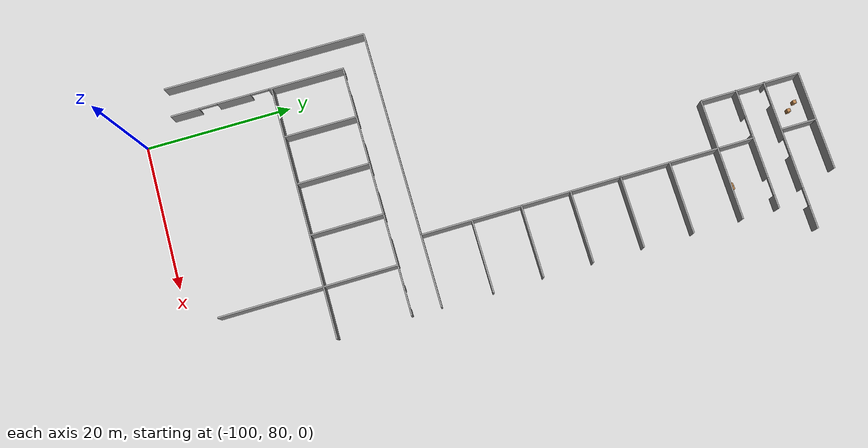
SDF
<sdf version="1.6">
 <world name="default">
  <model name="ground_plane">
   <static>1</static>
   <link name="link">
    <collision name="collision">
     <geometry><plane><normal>0 0 1</normal><size>100 100</size></plane></geometry>
     <surface><friction><ode><mu>100</mu><mu2>50</mu2></ode></friction></surface>
    </collision>
    <visual name="visual">
     <cast_shadows>0</cast_shadows>
     <geometry><plane><normal>0 0 1</normal><size>100 100</size></plane></geometry>
     <material>
      <script><uri>file://media/materials/scripts/gazebo.material</uri><name>Gazebo/Grey</name></script>
     </material>
    </visual>
   </link>
  </model>
  <model name="Jacaranda_v4_clone_1">
   <link name="Wall_0">
    <pose>-8.84429 26.2823 0 0 -0 0</pose>
    <visual name="Wall_0_Visual_0">
     <pose>-10.1136 0 1.25 0 -0 0</pose>
     <geometry><box><size>0.772872 0.2 2.5</size></box></geometry>
     <material>
      <script><uri>file://media/materials/scripts/gazebo.material</uri><name>Gazebo/Grey</name></script>
     </material>
    </visual>
    <collision name="Wall_0_Collision_0">
     <geometry><box><size>0.772872 0.2 2.5</size></box></geometry>
     <pose>-10.1136 0 1.25 0 -0 0</pose>
    </collision>
    <visual name="Wall_0_Visual_1">
     <pose>-4.7572 0 1.25 0 -0 0</pose>
     <geometry><box><size>4.93987 0.2 2.5</size></box></geometry>
     <material>
      <script><uri>file://media/materials/scripts/gazebo.material</uri><name>Gazebo/Grey</name></script>
     </material>
    </visual>
    <collision name="Wall_0_Collision_1">
     <geometry><box><size>4.93987 0.2 2.5</size></box></geometry>
     <pose>-4.7572 0 1.25 0 -0 0</pose>
    </collision>
    <visual name="Wall_0_Visual_2">
     <pose>2.52116 0 1.25 0 -0 0</pose>
     <geometry><box><size>4.61684 0.2 2.5</size></box></geometry>
     <material>
      <script><uri>file://media/materials/scripts/gazebo.material</uri><name>Gazebo/Grey</name></script>
     </material>
    </visual>
    <collision name="Wall_0_Collision_2">
     <geometry><box><size>4.61684 0.2 2.5</size></box></geometry>
     <pose>2.52116 0 1.25 0 -0 0</pose>
    </collision>
    <visual name="Wall_0_Visual_3">
     <pose>8.91479 0 1.25 0 -0 0</pose>
     <geometry><box><size>3.17042 0.2 2.5</size></box></geometry>
     <material>
      <script><uri>file://media/materials/scripts/gazebo.material</uri><name>Gazebo/Grey</name></script>
     </material>
    </visual>
    <collision name="Wall_0_Collision_3">
     <geometry><box><size>3.17042 0.2 2.5</size></box></geometry>
     <pose>8.91479 0 1.25 0 -0 0</pose>
    </collision>
    <visual name="Wall_0_Visual_4">
     <pose>-8.47713 0 2.25 0 -0 0</pose>
     <geometry><box><size>2.5 0.2 0.5</size></box></geometry>
     <material>
      <script><uri>file://media/materials/scripts/gazebo.material</uri><name>Gazebo/Grey</name></script>
     </material>
    </visual>
    <collision name="Wall_0_Collision_4">
     <geometry><box><size>2.5 0.2 0.5</size></box></geometry>
     <pose>-8.47713 0 2.25 0 -0 0</pose>
    </collision>
    <visual name="Wall_0_Visual_5">
     <pose>-1.03726 0 2.25 0 -0 0</pose>
     <geometry><box><size>2.5 0.2 0.5</size></box></geometry>
     <material>
      <script><uri>file://media/materials/scripts/gazebo.material</uri><name>Gazebo/Grey</name></script>
     </material>
    </visual>
    <collision name="Wall_0_Collision_5">
     <geometry><box><size>2.5 0.2 0.5</size></box></geometry>
     <pose>-1.03726 0 2.25 0 -0 0</pose>
    </collision>
    <visual name="Wall_0_Visual_6">
     <pose>6.07958 0 2.25 0 -0 0</pose>
     <geometry><box><size>2.5 0.2 0.5</size></box></geometry>
     <material>
      <script><uri>file://media/materials/scripts/gazebo.material</uri><name>Gazebo/Grey</name></script>
     </material>
    </visual>
    <collision name="Wall_0_Collision_6">
     <geometry><box><size>2.5 0.2 0.5</size></box></geometry>
     <pose>6.07958 0 2.25 0 -0 0</pose>
    </collision>
   </link>
   <link name="Wall_102">
    <collision name="Wall_102_Collision">
     <geometry><box><size>10 0.2 2.5</size></box></geometry>
     <pose>0 0 1.25 0 -0 0</pose>
    </collision>
    <visual name="Wall_102_Visual">
     <pose>0 0 1.25 0 -0 0</pose>
     <geometry><box><size>10 0.2 2.5</size></box></geometry>
     <material>
      <script><uri>file://media/materials/scripts/gazebo.material</uri><name>Gazebo/Grey</name></script>
     </material>
    </visual>
    <velocity_decay><linear>0</linear><angular>0</angular></velocity_decay>
    <pose>-16.4411 -32.898 0 0 0 -1.5708</pose>
   </link>
   <link name="Wall_104">
    <collision name="Wall_104_Collision">
     <geometry><box><size>10 0.2 2.5</size></box></geometry>
     <pose>0 0 1.25 0 -0 0</pose>
    </collision>
    <visual name="Wall_104_Visual">
     <pose>0 0 1.25 0 -0 0</pose>
     <geometry><box><size>10 0.2 2.5</size></box></geometry>
     <material>
      <script><uri>file://media/materials/scripts/gazebo.material</uri><name>Gazebo/Grey</name></script>
     </material>
    </visual>
    <velocity_decay><linear>0</linear><angular>0</angular></velocity_decay>
    <pose>-23.6073 -32.9162 0 0 0 -1.5708</pose>
   </link>
   <link name="Wall_106">
    <collision name="Wall_106_Collision">
     <geometry><box><size>10 0.2 2.5</size></box></geometry>
     <pose>0 0 1.25 0 -0 0</pose>
    </collision>
    <visual name="Wall_106_Visual">
     <pose>0 0 1.25 0 -0 0</pose>
     <geometry><box><size>10 0.2 2.5</size></box></geometry>
     <material>
      <script><uri>file://media/materials/scripts/gazebo.material</uri><name>Gazebo/Grey</name></script>
     </material>
    </visual>
    <velocity_decay><linear>0</linear><angular>0</angular></velocity_decay>
    <pose>-30.3649 -32.9482 0 0 0 -1.5708</pose>
   </link>
   <link name="Wall_108">
    <pose>-37.4695 -39.9617 0 0 0 -1.5708</pose>
    <visual name="Wall_108_Visual_0">
     <pose>-6.76156 0 1.25 0 -0 0</pose>
     <geometry><box><size>10.4769 0.2 2.5</size></box></geometry>
     <material>
      <script><uri>file://media/materials/scripts/gazebo.material</uri><name>Gazebo/Grey</name></script>
     </material>
    </visual>
    <collision name="Wall_108_Collision_0">
     <geometry><box><size>10.4769 0.2 2.5</size></box></geometry>
     <pose>-6.76156 0 1.25 0 -0 0</pose>
    </collision>
    <visual name="Wall_108_Visual_1">
     <pose>3.29825 0 1.25 0 -0 0</pose>
     <geometry><box><size>4.64276 0.2 2.5</size></box></geometry>
     <material>
      <script><uri>file://media/materials/scripts/gazebo.material</uri><name>Gazebo/Grey</name></script>
     </material>
    </visual>
    <collision name="Wall_108_Collision_1">
     <geometry><box><size>4.64276 0.2 2.5</size></box></geometry>
     <pose>3.29825 0 1.25 0 -0 0</pose>
    </collision>
    <visual name="Wall_108_Visual_2">
     <pose>10.0598 0 1.25 0 -0 0</pose>
     <geometry><box><size>3.88036 0.2 2.5</size></box></geometry>
     <material>
      <script><uri>file://media/materials/scripts/gazebo.material</uri><name>Gazebo/Grey</name></script>
     </material>
    </visual>
    <collision name="Wall_108_Collision_2">
     <geometry><box><size>3.88036 0.2 2.5</size></box></geometry>
     <pose>10.0598 0 1.25 0 -0 0</pose>
    </collision>
    <visual name="Wall_108_Visual_3">
     <pose>-0.273129 0 2.25 0 -0 0</pose>
     <geometry><box><size>2.5 0.2 0.5</size></box></geometry>
     <material>
      <script><uri>file://media/materials/scripts/gazebo.material</uri><name>Gazebo/Grey</name></script>
     </material>
    </visual>
    <collision name="Wall_108_Collision_3">
     <geometry><box><size>2.5 0.2 0.5</size></box></geometry>
     <pose>-0.273129 0 2.25 0 -0 0</pose>
    </collision>
    <visual name="Wall_108_Visual_4">
     <pose>6.86964 0 2.25 0 -0 0</pose>
     <geometry><box><size>2.5 0.2 0.5</size></box></geometry>
     <material>
      <script><uri>file://media/materials/scripts/gazebo.material</uri><name>Gazebo/Grey</name></script>
     </material>
    </visual>
    <collision name="Wall_108_Collision_4">
     <geometry><box><size>2.5 0.2 0.5</size></box></geometry>
     <pose>6.86964 0 2.25 0 -0 0</pose>
    </collision>
   </link>
   <link name="Wall_114">
    <collision name="Wall_114_Collision">
     <geometry><box><size>28 0.2 2.5</size></box></geometry>
     <pose>0 0 1.25 0 -0 0</pose>
    </collision>
    <visual name="Wall_114_Visual">
     <pose>0 0 1.25 0 -0 0</pose>
     <geometry><box><size>28 0.2 2.5</size></box></geometry>
     <material>
      <script><uri>file://media/materials/scripts/gazebo.material</uri><name>Gazebo/Grey</name></script>
     </material>
    </visual>
    <velocity_decay><linear>0</linear><angular>0</angular></velocity_decay>
    <pose>-41.4842 -37.994 0 0 0 -1.5708</pose>
   </link>
   <link name="Wall_2">
    <collision name="Wall_2_Collision">
     <geometry><box><size>10 0.2 2.5</size></box></geometry>
     <pose>0 0 1.25 0 -0 0</pose>
    </collision>
    <visual name="Wall_2_Visual">
     <pose>0 0 1.25 0 -0 0</pose>
     <geometry><box><size>10 0.2 2.5</size></box></geometry>
     <material>
      <script><uri>file://media/materials/scripts/gazebo.material</uri><name>Gazebo/Grey</name></script>
     </material>
    </visual>
    <velocity_decay><linear>0</linear><angular>0</angular></velocity_decay>
    <pose>-7.44654 3.56016 0 0 -0 0</pose>
   </link>
   <link name="Wall_22">
    <collision name="Wall_22_Collision">
     <geometry><box><size>5 0.2 2.5</size></box></geometry>
     <pose>0 0 1.25 0 -0 0</pose>
    </collision>
    <visual name="Wall_22_Visual">
     <pose>0 0 1.25 0 -0 0</pose>
     <geometry><box><size>5 0.2 2.5</size></box></geometry>
     <material>
      <script><uri>file://media/materials/scripts/gazebo.material</uri><name>Gazebo/Grey</name></script>
     </material>
    </visual>
    <velocity_decay><linear>0</linear><angular>0</angular></velocity_decay>
    <pose>-19.2226 28.7685 0 0 -0 1.5708</pose>
   </link>
   <link name="Wall_24">
    <collision name="Wall_24_Collision">
     <geometry><box><size>7 0.2 2.5</size></box></geometry>
     <pose>0 0 1.25 0 -0 0</pose>
    </collision>
    <visual name="Wall_24_Visual">
     <pose>0 0 1.25 0 -0 0</pose>
     <geometry><box><size>7 0.2 2.5</size></box></geometry>
     <material>
      <script><uri>file://media/materials/scripts/gazebo.material</uri><name>Gazebo/Grey</name></script>
     </material>
    </visual>
    <velocity_decay><linear>0</linear><angular>0</angular></velocity_decay>
    <pose>-15.7827 31.2426 0 0 -0 0</pose>
   </link>
   <link name="Wall_26">
    <collision name="Wall_26_Collision">
     <geometry><box><size>5 0.2 2.5</size></box></geometry>
     <pose>0 0 1.25 0 -0 0</pose>
    </collision>
    <visual name="Wall_26_Visual">
     <pose>0 0 1.25 0 -0 0</pose>
     <geometry><box><size>5 0.2 2.5</size></box></geometry>
     <material>
      <script><uri>file://media/materials/scripts/gazebo.material</uri><name>Gazebo/Grey</name></script>
     </material>
    </visual>
    <velocity_decay><linear>0</linear><angular>0</angular></velocity_decay>
    <pose>-12.42 28.8426 0 0 0 -1.5708</pose>
   </link>
   <link name="Wall_29">
    <collision name="Wall_29_Collision">
     <geometry><box><size>7 0.2 2.5</size></box></geometry>
     <pose>0 0 1.25 0 -0 0</pose>
    </collision>
    <visual name="Wall_29_Visual">
     <pose>0 0 1.25 0 -0 0</pose>
     <geometry><box><size>7 0.2 2.5</size></box></geometry>
     <material>
      <script><uri>file://media/materials/scripts/gazebo.material</uri><name>Gazebo/Grey</name></script>
     </material>
    </visual>
    <velocity_decay><linear>0</linear><angular>0</angular></velocity_decay>
    <pose>-8.85634 31.2426 0 0 -0 0</pose>
   </link>
   <link name="Wall_39">
    <collision name="Wall_39_Collision">
     <geometry><box><size>4 0.2 2.5</size></box></geometry>
     <pose>0 0 1.25 0 -0 0</pose>
    </collision>
    <visual name="Wall_39_Visual">
     <pose>0 0 1.25 0 -0 0</pose>
     <geometry><box><size>4 0.2 2.5</size></box></geometry>
     <material>
      <script><uri>file://media/materials/scripts/gazebo.material</uri><name>Gazebo/Grey</name></script>
     </material>
    </visual>
    <velocity_decay><linear>0</linear><angular>0</angular></velocity_decay>
    <pose>-19.206 24.2121 0 0 0 -1.5708</pose>
   </link>
   <link name="Wall_41">
    <pose>-10.8339 22.3118 0 0 -0 0</pose>
    <visual name="Wall_41_Visual_0">
     <pose>-6.54675 0 1.25 0 -0 0</pose>
     <geometry><box><size>3.9065 0.2 2.5</size></box></geometry>
     <material>
      <script><uri>file://media/materials/scripts/gazebo.material</uri><name>Gazebo/Grey</name></script>
     </material>
    </visual>
    <collision name="Wall_41_Collision_0">
     <geometry><box><size>3.9065 0.2 2.5</size></box></geometry>
     <pose>-6.54675 0 1.25 0 -0 0</pose>
    </collision>
    <visual name="Wall_41_Visual_1">
     <pose>1.04072 0 1.25 0 -0 0</pose>
     <geometry><box><size>6.26843 0.2 2.5</size></box></geometry>
     <material>
      <script><uri>file://media/materials/scripts/gazebo.material</uri><name>Gazebo/Grey</name></script>
     </material>
    </visual>
    <collision name="Wall_41_Collision_1">
     <geometry><box><size>6.26843 0.2 2.5</size></box></geometry>
     <pose>1.04072 0 1.25 0 -0 0</pose>
    </collision>
    <visual name="Wall_41_Visual_2">
     <pose>7.58747 0 1.25 0 -0 0</pose>
     <geometry><box><size>1.82507 0.2 2.5</size></box></geometry>
     <material>
      <script><uri>file://media/materials/scripts/gazebo.material</uri><name>Gazebo/Grey</name></script>
     </material>
    </visual>
    <collision name="Wall_41_Collision_2">
     <geometry><box><size>1.82507 0.2 2.5</size></box></geometry>
     <pose>7.58747 0 1.25 0 -0 0</pose>
    </collision>
    <visual name="Wall_41_Visual_3">
     <pose>-3.3435 0 2.25 0 -0 0</pose>
     <geometry><box><size>2.5 0.2 0.5</size></box></geometry>
     <material>
      <script><uri>file://media/materials/scripts/gazebo.material</uri><name>Gazebo/Grey</name></script>
     </material>
    </visual>
    <collision name="Wall_41_Collision_3">
     <geometry><box><size>2.5 0.2 0.5</size></box></geometry>
     <pose>-3.3435 0 2.25 0 -0 0</pose>
    </collision>
    <visual name="Wall_41_Visual_4">
     <pose>5.42493 0 2.25 0 -0 0</pose>
     <geometry><box><size>2.5 0.2 0.5</size></box></geometry>
     <material>
      <script><uri>file://media/materials/scripts/gazebo.material</uri><name>Gazebo/Grey</name></script>
     </material>
    </visual>
    <collision name="Wall_41_Collision_4">
     <geometry><box><size>2.5 0.2 0.5</size></box></geometry>
     <pose>5.42493 0 2.25 0 -0 0</pose>
    </collision>
   </link>
   <link name="Wall_45">
    <collision name="Wall_45_Collision">
     <geometry><box><size>5 0.2 2.5</size></box></geometry>
     <pose>0 0 1.25 0 -0 0</pose>
    </collision>
    <visual name="Wall_45_Visual">
     <pose>0 0 1.25 0 -0 0</pose>
     <geometry><box><size>5 0.2 2.5</size></box></geometry>
     <material>
      <script><uri>file://media/materials/scripts/gazebo.material</uri><name>Gazebo/Grey</name></script>
     </material>
    </visual>
    <velocity_decay><linear>0</linear><angular>0</angular></velocity_decay>
    <pose>-19.2149 19.8047 0 0 0 -1.5708</pose>
   </link>
   <link name="Wall_47">
    <collision name="Wall_47_Collision">
     <geometry><box><size>16.9069 0.2 2.5</size></box></geometry>
     <pose>0 0 1.25 0 -0 0</pose>
    </collision>
    <visual name="Wall_47_Visual">
     <pose>0 0 1.25 0 -0 0</pose>
     <geometry><box><size>16.9069 0.2 2.5</size></box></geometry>
     <material>
      <script><uri>file://media/materials/scripts/gazebo.material</uri><name>Gazebo/Grey</name></script>
     </material>
    </visual>
    <velocity_decay><linear>0</linear><angular>0</angular></velocity_decay>
    <pose>-10.7923 17.2628 0 0 -0 0</pose>
   </link>
   <link name="Wall_49">
    <collision name="Wall_49_Collision">
     <geometry><box><size>46.4765 0.2 2.5</size></box></geometry>
     <pose>0 0 1.25 0 -0 0</pose>
    </collision>
    <visual name="Wall_49_Visual">
     <pose>0 0 1.25 0 -0 0</pose>
     <geometry><box><size>46.4765 0.2 2.5</size></box></geometry>
     <material>
      <script><uri>file://media/materials/scripts/gazebo.material</uri><name>Gazebo/Grey</name></script>
     </material>
    </visual>
    <velocity_decay><linear>0</linear><angular>0</angular></velocity_decay>
    <pose>-12.3393 -0.801467 0 0 0 -1.5708</pose>
   </link>
   <link name="Wall_52">
    <collision name="Wall_52_Collision">
     <geometry><box><size>24.1932 0.2 2.5</size></box></geometry>
     <pose>0 0 1.25 0 -0 0</pose>
    </collision>
    <visual name="Wall_52_Visual">
     <pose>0 0 1.25 0 -0 0</pose>
     <geometry><box><size>24.1932 0.2 2.5</size></box></geometry>
     <material>
      <script><uri>file://media/materials/scripts/gazebo.material</uri><name>Gazebo/Grey</name></script>
     </material>
    </visual>
    <velocity_decay><linear>0</linear><angular>0</angular></velocity_decay>
    <pose>-9.37734 -40.0171 0 0 0 -1.5708</pose>
   </link>
   <link name="Wall_55">
    <collision name="Wall_55_Collision">
     <geometry><box><size>10 0.2 2.5</size></box></geometry>
     <pose>0 0 1.25 0 -0 0</pose>
    </collision>
    <visual name="Wall_55_Visual">
     <pose>0 0 1.25 0 -0 0</pose>
     <geometry><box><size>10 0.2 2.5</size></box></geometry>
     <material>
      <script><uri>file://media/materials/scripts/gazebo.material</uri><name>Gazebo/Grey</name></script>
     </material>
    </visual>
    <velocity_decay><linear>0</linear><angular>0</angular></velocity_decay>
    <pose>-7.39012 10.4267 0 0 -0 3.14159</pose>
   </link>
   <link name="Wall_59">
    <collision name="Wall_59_Collision">
     <geometry><box><size>10 0.2 2.5</size></box></geometry>
     <pose>0 0 1.25 0 -0 0</pose>
    </collision>
    <visual name="Wall_59_Visual">
     <pose>0 0 1.25 0 -0 0</pose>
     <geometry><box><size>10 0.2 2.5</size></box></geometry>
     <material>
      <script><uri>file://media/materials/scripts/gazebo.material</uri><name>Gazebo/Grey</name></script>
     </material>
    </visual>
    <velocity_decay><linear>0</linear><angular>0</angular></velocity_decay>
    <pose>-7.43285 -3.41806 0 0 -0 0</pose>
   </link>
   <link name="Wall_61">
    <collision name="Wall_61_Collision">
     <geometry><box><size>10 0.2 2.5</size></box></geometry>
     <pose>0 0 1.25 0 -0 0</pose>
    </collision>
    <visual name="Wall_61_Visual">
     <pose>0 0 1.25 0 -0 0</pose>
     <geometry><box><size>10 0.2 2.5</size></box></geometry>
     <material>
      <script><uri>file://media/materials/scripts/gazebo.material</uri><name>Gazebo/Grey</name></script>
     </material>
    </visual>
    <velocity_decay><linear>0</linear><angular>0</angular></velocity_decay>
    <pose>-7.44869 -10.2258 0 0 -0 0</pose>
   </link>
   <link name="Wall_63">
    <collision name="Wall_63_Collision">
     <geometry><box><size>10 0.2 2.5</size></box></geometry>
     <pose>0 0 1.25 0 -0 0</pose>
    </collision>
    <visual name="Wall_63_Visual">
     <pose>0 0 1.25 0 -0 0</pose>
     <geometry><box><size>10 0.2 2.5</size></box></geometry>
     <material>
      <script><uri>file://media/materials/scripts/gazebo.material</uri><name>Gazebo/Grey</name></script>
     </material>
    </visual>
    <velocity_decay><linear>0</linear><angular>0</angular></velocity_decay>
    <pose>-7.36232 -17.0326 0 0 -0 0</pose>
   </link>
   <link name="Wall_65">
    <pose>-21.9808 -24.0075 0 0 -0 0</pose>
    <visual name="Wall_65_Visual_0">
     <pose>-16.5353 0 1.25 0 -0 0</pose>
     <geometry><box><size>5.92942 0.2 2.5</size></box></geometry>
     <material>
      <script><uri>file://media/materials/scripts/gazebo.material</uri><name>Gazebo/Grey</name></script>
     </material>
    </visual>
    <collision name="Wall_65_Collision_0">
     <geometry><box><size>5.92942 0.2 2.5</size></box></geometry>
     <pose>-16.5353 0 1.25 0 -0 0</pose>
    </collision>
    <visual name="Wall_65_Visual_1">
     <pose>2.96471 0 0.25 0 -0 0</pose>
     <geometry><box><size>33.0706 0.2 0.5</size></box></geometry>
     <material>
      <script><uri>file://media/materials/scripts/gazebo.material</uri><name>Gazebo/Grey</name></script>
     </material>
    </visual>
    <collision name="Wall_65_Collision_1">
     <geometry><box><size>33.0706 0.2 0.5</size></box></geometry>
     <pose>2.96471 0 0.25 0 -0 0</pose>
    </collision>
    <visual name="Wall_65_Visual_2">
     <pose>-10.2002 0 1.5 0 -0 0</pose>
     <geometry><box><size>2.74072 0.2 2</size></box></geometry>
     <material>
      <script><uri>file://media/materials/scripts/gazebo.material</uri><name>Gazebo/Grey</name></script>
     </material>
    </visual>
    <collision name="Wall_65_Collision_2">
     <geometry><box><size>2.74072 0.2 2</size></box></geometry>
     <pose>-10.2002 0 1.5 0 -0 0</pose>
    </collision>
    <visual name="Wall_65_Visual_3">
     <pose>-5.38873 0 1.5 0 -0 0</pose>
     <geometry><box><size>2.88224 0.2 2</size></box></geometry>
     <material>
      <script><uri>file://media/materials/scripts/gazebo.material</uri><name>Gazebo/Grey</name></script>
     </material>
    </visual>
    <collision name="Wall_65_Collision_3">
     <geometry><box><size>2.88224 0.2 2</size></box></geometry>
     <pose>-5.38873 0 1.5 0 -0 0</pose>
    </collision>
    <visual name="Wall_65_Visual_4">
     <pose>-0.471118 0 1.5 0 -0 0</pose>
     <geometry><box><size>2.95299 0.2 2</size></box></geometry>
     <material>
      <script><uri>file://media/materials/scripts/gazebo.material</uri><name>Gazebo/Grey</name></script>
     </material>
    </visual>
    <collision name="Wall_65_Collision_4">
     <geometry><box><size>2.95299 0.2 2</size></box></geometry>
     <pose>-0.471118 0 1.5 0 -0 0</pose>
    </collision>
    <visual name="Wall_65_Visual_5">
     <pose>4.16347 0 1.5 0 -0 0</pose>
     <geometry><box><size>2.31618 0.2 2</size></box></geometry>
     <material>
      <script><uri>file://media/materials/scripts/gazebo.material</uri><name>Gazebo/Grey</name></script>
     </material>
    </visual>
    <collision name="Wall_65_Collision_5">
     <geometry><box><size>2.31618 0.2 2</size></box></geometry>
     <pose>4.16347 0 1.5 0 -0 0</pose>
    </collision>
    <visual name="Wall_65_Visual_6">
     <pose>13.4108 0 1.5 0 -0 0</pose>
     <geometry><box><size>12.1784 0.2 2</size></box></geometry>
     <material>
      <script><uri>file://media/materials/scripts/gazebo.material</uri><name>Gazebo/Grey</name></script>
     </material>
    </visual>
    <collision name="Wall_65_Collision_6">
     <geometry><box><size>12.1784 0.2 2</size></box></geometry>
     <pose>13.4108 0 1.5 0 -0 0</pose>
    </collision>
    <visual name="Wall_65_Visual_7">
     <pose>-12.5706 0 1.9 0 -0 0</pose>
     <geometry><box><size>2 0.2 1.2</size></box></geometry>
     <material>
      <script><uri>file://media/materials/scripts/gazebo.material</uri><name>Gazebo/Grey</name></script>
     </material>
    </visual>
    <collision name="Wall_65_Collision_7">
     <geometry><box><size>2 0.2 1.2</size></box></geometry>
     <pose>-12.5706 0 1.9 0 -0 0</pose>
    </collision>
    <visual name="Wall_65_Visual_8">
     <pose>-7.82985 0 1.9 0 -0 0</pose>
     <geometry><box><size>2 0.2 1.2</size></box></geometry>
     <material>
      <script><uri>file://media/materials/scripts/gazebo.material</uri><name>Gazebo/Grey</name></script>
     </material>
    </visual>
    <collision name="Wall_65_Collision_8">
     <geometry><box><size>2 0.2 1.2</size></box></geometry>
     <pose>-7.82985 0 1.9 0 -0 0</pose>
    </collision>
    <visual name="Wall_65_Visual_9">
     <pose>-2.94761 0 1.9 0 -0 0</pose>
     <geometry><box><size>2 0.2 1.2</size></box></geometry>
     <material>
      <script><uri>file://media/materials/scripts/gazebo.material</uri><name>Gazebo/Grey</name></script>
     </material>
    </visual>
    <collision name="Wall_65_Collision_9">
     <geometry><box><size>2 0.2 1.2</size></box></geometry>
     <pose>-2.94761 0 1.9 0 -0 0</pose>
    </collision>
    <visual name="Wall_65_Visual_10">
     <pose>2.00538 0 1.9 0 -0 0</pose>
     <geometry><box><size>2 0.2 1.2</size></box></geometry>
     <material>
      <script><uri>file://media/materials/scripts/gazebo.material</uri><name>Gazebo/Grey</name></script>
     </material>
    </visual>
    <collision name="Wall_65_Collision_10">
     <geometry><box><size>2 0.2 1.2</size></box></geometry>
     <pose>2.00538 0 1.9 0 -0 0</pose>
    </collision>
    <visual name="Wall_65_Visual_11">
     <pose>6.32156 0 1.9 0 -0 0</pose>
     <geometry><box><size>2 0.2 1.2</size></box></geometry>
     <material>
      <script><uri>file://media/materials/scripts/gazebo.material</uri><name>Gazebo/Grey</name></script>
     </material>
    </visual>
    <collision name="Wall_65_Collision_11">
     <geometry><box><size>2 0.2 1.2</size></box></geometry>
     <pose>6.32156 0 1.9 0 -0 0</pose>
    </collision>
   </link>
   <link name="Wall_89">
    <pose>-20.0123 -27.9879 0 0 -0 3.14159</pose>
    <visual name="Wall_89_Visual_0">
     <pose>-17.0213 0 1.25 0 -0 0</pose>
     <geometry><box><size>0.957415 0.2 2.5</size></box></geometry>
     <material>
      <script><uri>file://media/materials/scripts/gazebo.material</uri><name>Gazebo/Grey</name></script>
     </material>
    </visual>
    <collision name="Wall_89_Collision_0">
     <geometry><box><size>0.957415 0.2 2.5</size></box></geometry>
     <pose>-17.0213 0 1.25 0 -0 0</pose>
    </collision>
    <visual name="Wall_89_Visual_1">
     <pose>-13.6838 0 1.25 0 -0 0</pose>
     <geometry><box><size>0.717618 0.2 2.5</size></box></geometry>
     <material>
      <script><uri>file://media/materials/scripts/gazebo.material</uri><name>Gazebo/Grey</name></script>
     </material>
    </visual>
    <collision name="Wall_89_Collision_1">
     <geometry><box><size>0.717618 0.2 2.5</size></box></geometry>
     <pose>-13.6838 0 1.25 0 -0 0</pose>
    </collision>
    <visual name="Wall_89_Visual_2">
     <pose>-8.84673 0 1.25 0 -0 0</pose>
     <geometry><box><size>3.95648 0.2 2.5</size></box></geometry>
     <material>
      <script><uri>file://media/materials/scripts/gazebo.material</uri><name>Gazebo/Grey</name></script>
     </material>
    </visual>
    <collision name="Wall_89_Collision_2">
     <geometry><box><size>3.95648 0.2 2.5</size></box></geometry>
     <pose>-8.84673 0 1.25 0 -0 0</pose>
    </collision>
    <visual name="Wall_89_Visual_3">
     <pose>-2.29074 0 1.25 0 -0 0</pose>
     <geometry><box><size>4.15549 0.2 2.5</size></box></geometry>
     <material>
      <script><uri>file://media/materials/scripts/gazebo.material</uri><name>Gazebo/Grey</name></script>
     </material>
    </visual>
    <collision name="Wall_89_Collision_3">
     <geometry><box><size>4.15549 0.2 2.5</size></box></geometry>
     <pose>-2.29074 0 1.25 0 -0 0</pose>
    </collision>
    <visual name="Wall_89_Visual_4">
     <pose>4.53043 0 1.25 0 -0 0</pose>
     <geometry><box><size>4.48686 0.2 2.5</size></box></geometry>
     <material>
      <script><uri>file://media/materials/scripts/gazebo.material</uri><name>Gazebo/Grey</name></script>
     </material>
    </visual>
    <collision name="Wall_89_Collision_4">
     <geometry><box><size>4.48686 0.2 2.5</size></box></geometry>
     <pose>4.53043 0 1.25 0 -0 0</pose>
    </collision>
    <visual name="Wall_89_Visual_5">
     <pose>11.6732 0 1.25 0 -0 0</pose>
     <geometry><box><size>4.79864 0.2 2.5</size></box></geometry>
     <material>
      <script><uri>file://media/materials/scripts/gazebo.material</uri><name>Gazebo/Grey</name></script>
     </material>
    </visual>
    <collision name="Wall_89_Collision_5">
     <geometry><box><size>4.79864 0.2 2.5</size></box></geometry>
     <pose>11.6732 0 1.25 0 -0 0</pose>
    </collision>
    <visual name="Wall_89_Visual_6">
     <pose>17.0363 0 1.25 0 -0 0</pose>
     <geometry><box><size>0.927498 0.2 2.5</size></box></geometry>
     <material>
      <script><uri>file://media/materials/scripts/gazebo.material</uri><name>Gazebo/Grey</name></script>
     </material>
    </visual>
    <collision name="Wall_89_Collision_6">
     <geometry><box><size>0.927498 0.2 2.5</size></box></geometry>
     <pose>17.0363 0 1.25 0 -0 0</pose>
    </collision>
    <visual name="Wall_89_Visual_7">
     <pose>-15.2926 0 2.25 0 -0 0</pose>
     <geometry><box><size>2.5 0.2 0.5</size></box></geometry>
     <material>
      <script><uri>file://media/materials/scripts/gazebo.material</uri><name>Gazebo/Grey</name></script>
     </material>
    </visual>
    <collision name="Wall_89_Collision_7">
     <geometry><box><size>2.5 0.2 0.5</size></box></geometry>
     <pose>-15.2926 0 2.25 0 -0 0</pose>
    </collision>
    <visual name="Wall_89_Visual_8">
     <pose>-12.075 0 2.25 0 -0 0</pose>
     <geometry><box><size>2.5 0.2 0.5</size></box></geometry>
     <material>
      <script><uri>file://media/materials/scripts/gazebo.material</uri><name>Gazebo/Grey</name></script>
     </material>
    </visual>
    <collision name="Wall_89_Collision_8">
     <geometry><box><size>2.5 0.2 0.5</size></box></geometry>
     <pose>-12.075 0 2.25 0 -0 0</pose>
    </collision>
    <visual name="Wall_89_Visual_9">
     <pose>-5.61848 0 2.25 0 -0 0</pose>
     <geometry><box><size>2.5 0.2 0.5</size></box></geometry>
     <material>
      <script><uri>file://media/materials/scripts/gazebo.material</uri><name>Gazebo/Grey</name></script>
     </material>
    </visual>
    <collision name="Wall_89_Collision_9">
     <geometry><box><size>2.5 0.2 0.5</size></box></geometry>
     <pose>-5.61848 0 2.25 0 -0 0</pose>
    </collision>
    <visual name="Wall_89_Visual_10">
     <pose>1.037 0 2.25 0 -0 0</pose>
     <geometry><box><size>2.5 0.2 0.5</size></box></geometry>
     <material>
      <script><uri>file://media/materials/scripts/gazebo.material</uri><name>Gazebo/Grey</name></script>
     </material>
    </visual>
    <collision name="Wall_89_Collision_10">
     <geometry><box><size>2.5 0.2 0.5</size></box></geometry>
     <pose>1.037 0 2.25 0 -0 0</pose>
    </collision>
    <visual name="Wall_89_Visual_11">
     <pose>8.02387 0 2.25 0 -0 0</pose>
     <geometry><box><size>2.5 0.2 0.5</size></box></geometry>
     <material>
      <script><uri>file://media/materials/scripts/gazebo.material</uri><name>Gazebo/Grey</name></script>
     </material>
    </visual>
    <collision name="Wall_89_Collision_11">
     <geometry><box><size>2.5 0.2 0.5</size></box></geometry>
     <pose>8.02387 0 2.25 0 -0 0</pose>
    </collision>
    <visual name="Wall_89_Visual_12">
     <pose>15.3225 0 2.25 0 -0 0</pose>
     <geometry><box><size>2.5 0.2 0.5</size></box></geometry>
     <material>
      <script><uri>file://media/materials/scripts/gazebo.material</uri><name>Gazebo/Grey</name></script>
     </material>
    </visual>
    <collision name="Wall_89_Collision_12">
     <geometry><box><size>2.5 0.2 0.5</size></box></geometry>
     <pose>15.3225 0 2.25 0 -0 0</pose>
    </collision>
   </link>
   <link name="Wall_96">
    <collision name="Wall_96_Collision">
     <geometry><box><size>35 0.2 2.5</size></box></geometry>
     <pose>0 0 1.25 0 -0 0</pose>
    </collision>
    <visual name="Wall_96_Visual">
     <pose>0 0 1.25 0 -0 0</pose>
     <geometry><box><size>35 0.2 2.5</size></box></geometry>
     <material>
      <script><uri>file://media/materials/scripts/gazebo.material</uri><name>Gazebo/Grey</name></script>
     </material>
    </visual>
    <velocity_decay><linear>0</linear><angular>0</angular></velocity_decay>
    <pose>-19.8824 -37.9939 0 0 -0 3.14159</pose>
   </link>
   <static>1</static>
   <pose>-65.1832 136.528 0 0 -0 0</pose>
  </model>
  <model name="cabinet">
   <static>1</static>
   <link name="cabinet_bottom_plate">
    <inertial>
     <pose>0 0 -1 0 -0 0</pose>
     <inertia><ixx>2.05</ixx><ixy>0</ixy><ixz>0</ixz><iyy>2.05</iyy><iyz>0</iyz><izz>2.05</izz></inertia>
     <mass>25</mass>
    </inertial>
    <collision name="cabinet_bottom_plate_geom">
     <pose>0 0 0.01 0 -0 0</pose>
     <geometry><box><size>0.45 0.45 0.02</size></box></geometry>
    </collision>
    <visual name="cabinet_bottom_plate_geom_visual">
     <pose>0 0 0.01 0 -0 0</pose>
     <geometry><box><size>0.45 0.45 0.02</size></box></geometry>
     <material>
      <script><uri>file://media/materials/scripts/gazebo.material</uri><name>Gazebo/Wood</name></script>
     </material>
    </visual>
    <collision name="cabinet_bottom_plate_geom_cabinet_back_plate">
     <pose>0.235 0 0.51 0 -0 0</pose>
     <geometry><box><size>0.02 0.45 1.02</size></box></geometry>
    </collision>
    <visual name="cabinet_bottom_plate_geom_cabinet_back_plate_visual">
     <pose>0.235 0 0.51 0 -0 0</pose>
     <geometry><box><size>0.02 0.45 1.02</size></box></geometry>
     <material>
      <script><uri>file://media/materials/scripts/gazebo.material</uri><name>Gazebo/Wood</name></script>
     </material>
    </visual>
    <collision name="cabinet_bottom_plate_geom_cabinet_left_plate">
     <pose>0 0.235 0.51 0 -0 0</pose>
     <geometry><box><size>0.45 0.02 1.02</size></box></geometry>
    </collision>
    <visual name="cabinet_bottom_plate_geom_cabinet_left_plate_visual">
     <pose>0 0.235 0.51 0 -0 0</pose>
     <geometry><box><size>0.45 0.02 1.02</size></box></geometry>
     <material>
      <script><uri>file://media/materials/scripts/gazebo.material</uri><name>Gazebo/Wood</name></script>
     </material>
    </visual>
    <collision name="cabinet_bottom_plate_geom_cabinet_middle_plate">
     <pose>0 0 0.51 0 -0 0</pose>
     <geometry><box><size>0.45 0.45 0.02</size></box></geometry>
    </collision>
    <visual name="cabinet_bottom_plate_geom_cabinet_middle_plate_visual">
     <pose>0 0 0.51 0 -0 0</pose>
     <geometry><box><size>0.45 0.45 0.02</size></box></geometry>
     <material>
      <script><uri>file://media/materials/scripts/gazebo.material</uri><name>Gazebo/Wood</name></script>
     </material>
    </visual>
    <collision name="cabinet_bottom_plate_geom_cabinet_right_plate">
     <pose>0 -0.235 0.51 0 -0 0</pose>
     <geometry><box><size>0.45 0.02 1.02</size></box></geometry>
    </collision>
    <visual name="cabinet_bottom_plate_geom_cabinet_right_plate_visual">
     <pose>0 -0.235 0.51 0 -0 0</pose>
     <geometry><box><size>0.45 0.02 1.02</size></box></geometry>
     <material>
      <script><uri>file://media/materials/scripts/gazebo.material</uri><name>Gazebo/Wood</name></script>
     </material>
    </visual>
    <collision name="cabinet_bottom_plate_geom_cabinet_top_plate">
     <pose>0 0 1.01 0 -0 0</pose>
     <geometry><box><size>0.45 0.45 0.02</size></box></geometry>
    </collision>
    <visual name="cabinet_bottom_plate_geom_cabinet_top_plate_visual">
     <pose>0 0 1.01 0 -0 0</pose>
     <geometry><box><size>0.45 0.45 0.02</size></box></geometry>
     <material>
      <script><uri>file://media/materials/scripts/gazebo.material</uri><name>Gazebo/Wood</name></script>
     </material>
    </visual>
   </link>
   <pose>-80.1231 165.282 0 0 -0 0</pose>
  </model>
  <model name="cabinet_0">
   <static>1</static>
   <link name="cabinet_bottom_plate">
    <inertial>
     <pose>0 0 -1 0 -0 0</pose>
     <inertia><ixx>2.05</ixx><ixy>0</ixy><ixz>0</ixz><iyy>2.05</iyy><iyz>0</iyz><izz>2.05</izz></inertia>
     <mass>25</mass>
    </inertial>
    <collision name="cabinet_bottom_plate_geom">
     <pose>0 0 0.01 0 -0 0</pose>
     <geometry><box><size>0.45 0.45 0.02</size></box></geometry>
    </collision>
    <visual name="cabinet_bottom_plate_geom_visual">
     <pose>0 0 0.01 0 -0 0</pose>
     <geometry><box><size>0.45 0.45 0.02</size></box></geometry>
     <material>
      <script><uri>file://media/materials/scripts/gazebo.material</uri><name>Gazebo/Wood</name></script>
     </material>
    </visual>
    <collision name="cabinet_bottom_plate_geom_cabinet_back_plate">
     <pose>0.235 0 0.51 0 -0 0</pose>
     <geometry><box><size>0.02 0.45 1.02</size></box></geometry>
    </collision>
    <visual name="cabinet_bottom_plate_geom_cabinet_back_plate_visual">
     <pose>0.235 0 0.51 0 -0 0</pose>
     <geometry><box><size>0.02 0.45 1.02</size></box></geometry>
     <material>
      <script><uri>file://media/materials/scripts/gazebo.material</uri><name>Gazebo/Wood</name></script>
     </material>
    </visual>
    <collision name="cabinet_bottom_plate_geom_cabinet_left_plate">
     <pose>0 0.235 0.51 0 -0 0</pose>
     <geometry><box><size>0.45 0.02 1.02</size></box></geometry>
    </collision>
    <visual name="cabinet_bottom_plate_geom_cabinet_left_plate_visual">
     <pose>0 0.235 0.51 0 -0 0</pose>
     <geometry><box><size>0.45 0.02 1.02</size></box></geometry>
     <material>
      <script><uri>file://media/materials/scripts/gazebo.material</uri><name>Gazebo/Wood</name></script>
     </material>
    </visual>
    <collision name="cabinet_bottom_plate_geom_cabinet_middle_plate">
     <pose>0 0 0.51 0 -0 0</pose>
     <geometry><box><size>0.45 0.45 0.02</size></box></geometry>
    </collision>
    <visual name="cabinet_bottom_plate_geom_cabinet_middle_plate_visual">
     <pose>0 0 0.51 0 -0 0</pose>
     <geometry><box><size>0.45 0.45 0.02</size></box></geometry>
     <material>
      <script><uri>file://media/materials/scripts/gazebo.material</uri><name>Gazebo/Wood</name></script>
     </material>
    </visual>
    <collision name="cabinet_bottom_plate_geom_cabinet_right_plate">
     <pose>0 -0.235 0.51 0 -0 0</pose>
     <geometry><box><size>0.45 0.02 1.02</size></box></geometry>
    </collision>
    <visual name="cabinet_bottom_plate_geom_cabinet_right_plate_visual">
     <pose>0 -0.235 0.51 0 -0 0</pose>
     <geometry><box><size>0.45 0.02 1.02</size></box></geometry>
     <material>
      <script><uri>file://media/materials/scripts/gazebo.material</uri><name>Gazebo/Wood</name></script>
     </material>
    </visual>
    <collision name="cabinet_bottom_plate_geom_cabinet_top_plate">
     <pose>0 0 1.01 0 -0 0</pose>
     <geometry><box><size>0.45 0.45 0.02</size></box></geometry>
    </collision>
    <visual name="cabinet_bottom_plate_geom_cabinet_top_plate_visual">
     <pose>0 0 1.01 0 -0 0</pose>
     <geometry><box><size>0.45 0.45 0.02</size></box></geometry>
     <material>
      <script><uri>file://media/materials/scripts/gazebo.material</uri><name>Gazebo/Wood</name></script>
     </material>
    </visual>
   </link>
   <pose>-81.0342 166.447 0 0 -0 0</pose>
  </model>
  <model name="cabinet_1">
   <static>1</static>
   <link name="cabinet_bottom_plate">
    <inertial>
     <pose>0 0 -1 0 -0 0</pose>
     <inertia><ixx>2.05</ixx><ixy>0</ixy><ixz>0</ixz><iyy>2.05</iyy><iyz>0</iyz><izz>2.05</izz></inertia>
     <mass>25</mass>
    </inertial>
    <collision name="cabinet_bottom_plate_geom">
     <pose>0 0 0.01 0 -0 0</pose>
     <geometry><box><size>0.45 0.45 0.02</size></box></geometry>
    </collision>
    <visual name="cabinet_bottom_plate_geom_visual">
     <pose>0 0 0.01 0 -0 0</pose>
     <geometry><box><size>0.45 0.45 0.02</size></box></geometry>
     <material>
      <script><uri>file://media/materials/scripts/gazebo.material</uri><name>Gazebo/Wood</name></script>
     </material>
    </visual>
    <collision name="cabinet_bottom_plate_geom_cabinet_back_plate">
     <pose>0.235 0 0.51 0 -0 0</pose>
     <geometry><box><size>0.02 0.45 1.02</size></box></geometry>
    </collision>
    <visual name="cabinet_bottom_plate_geom_cabinet_back_plate_visual">
     <pose>0.235 0 0.51 0 -0 0</pose>
     <geometry><box><size>0.02 0.45 1.02</size></box></geometry>
     <material>
      <script><uri>file://media/materials/scripts/gazebo.material</uri><name>Gazebo/Wood</name></script>
     </material>
    </visual>
    <collision name="cabinet_bottom_plate_geom_cabinet_left_plate">
     <pose>0 0.235 0.51 0 -0 0</pose>
     <geometry><box><size>0.45 0.02 1.02</size></box></geometry>
    </collision>
    <visual name="cabinet_bottom_plate_geom_cabinet_left_plate_visual">
     <pose>0 0.235 0.51 0 -0 0</pose>
     <geometry><box><size>0.45 0.02 1.02</size></box></geometry>
     <material>
      <script><uri>file://media/materials/scripts/gazebo.material</uri><name>Gazebo/Wood</name></script>
     </material>
    </visual>
    <collision name="cabinet_bottom_plate_geom_cabinet_middle_plate">
     <pose>0 0 0.51 0 -0 0</pose>
     <geometry><box><size>0.45 0.45 0.02</size></box></geometry>
    </collision>
    <visual name="cabinet_bottom_plate_geom_cabinet_middle_plate_visual">
     <pose>0 0 0.51 0 -0 0</pose>
     <geometry><box><size>0.45 0.45 0.02</size></box></geometry>
     <material>
      <script><uri>file://media/materials/scripts/gazebo.material</uri><name>Gazebo/Wood</name></script>
     </material>
    </visual>
    <collision name="cabinet_bottom_plate_geom_cabinet_right_plate">
     <pose>0 -0.235 0.51 0 -0 0</pose>
     <geometry><box><size>0.45 0.02 1.02</size></box></geometry>
    </collision>
    <visual name="cabinet_bottom_plate_geom_cabinet_right_plate_visual">
     <pose>0 -0.235 0.51 0 -0 0</pose>
     <geometry><box><size>0.45 0.02 1.02</size></box></geometry>
     <material>
      <script><uri>file://media/materials/scripts/gazebo.material</uri><name>Gazebo/Wood</name></script>
     </material>
    </visual>
    <collision name="cabinet_bottom_plate_geom_cabinet_top_plate">
     <pose>0 0 1.01 0 -0 0</pose>
     <geometry><box><size>0.45 0.45 0.02</size></box></geometry>
    </collision>
    <visual name="cabinet_bottom_plate_geom_cabinet_top_plate_visual">
     <pose>0 0 1.01 0 -0 0</pose>
     <geometry><box><size>0.45 0.45 0.02</size></box></geometry>
     <material>
      <script><uri>file://media/materials/scripts/gazebo.material</uri><name>Gazebo/Wood</name></script>
     </material>
    </visual>
   </link>
   <pose>-72.529 154.32 0 0 0 -1.51403</pose>
  </model>
  <model name="cabinet_2">
   <static>1</static>
   <link name="cabinet_bottom_plate">
    <inertial>
     <pose>0 0 -1 0 -0 0</pose>
     <inertia><ixx>2.05</ixx><ixy>0</ixy><ixz>0</ixz><iyy>2.05</iyy><iyz>0</iyz><izz>2.05</izz></inertia>
     <mass>25</mass>
    </inertial>
    <collision name="cabinet_bottom_plate_geom">
     <pose>0 0 0.01 0 -0 0</pose>
     <geometry><box><size>0.45 0.45 0.02</size></box></geometry>
    </collision>
    <visual name="cabinet_bottom_plate_geom_visual">
     <pose>0 0 0.01 0 -0 0</pose>
     <geometry><box><size>0.45 0.45 0.02</size></box></geometry>
     <material>
      <script><uri>file://media/materials/scripts/gazebo.material</uri><name>Gazebo/Wood</name></script>
     </material>
    </visual>
    <collision name="cabinet_bottom_plate_geom_cabinet_back_plate">
     <pose>0.235 0 0.51 0 -0 0</pose>
     <geometry><box><size>0.02 0.45 1.02</size></box></geometry>
    </collision>
    <visual name="cabinet_bottom_plate_geom_cabinet_back_plate_visual">
     <pose>0.235 0 0.51 0 -0 0</pose>
     <geometry><box><size>0.02 0.45 1.02</size></box></geometry>
     <material>
      <script><uri>file://media/materials/scripts/gazebo.material</uri><name>Gazebo/Wood</name></script>
     </material>
    </visual>
    <collision name="cabinet_bottom_plate_geom_cabinet_left_plate">
     <pose>0 0.235 0.51 0 -0 0</pose>
     <geometry><box><size>0.45 0.02 1.02</size></box></geometry>
    </collision>
    <visual name="cabinet_bottom_plate_geom_cabinet_left_plate_visual">
     <pose>0 0.235 0.51 0 -0 0</pose>
     <geometry><box><size>0.45 0.02 1.02</size></box></geometry>
     <material>
      <script><uri>file://media/materials/scripts/gazebo.material</uri><name>Gazebo/Wood</name></script>
     </material>
    </visual>
    <collision name="cabinet_bottom_plate_geom_cabinet_middle_plate">
     <pose>0 0 0.51 0 -0 0</pose>
     <geometry><box><size>0.45 0.45 0.02</size></box></geometry>
    </collision>
    <visual name="cabinet_bottom_plate_geom_cabinet_middle_plate_visual">
     <pose>0 0 0.51 0 -0 0</pose>
     <geometry><box><size>0.45 0.45 0.02</size></box></geometry>
     <material>
      <script><uri>file://media/materials/scripts/gazebo.material</uri><name>Gazebo/Wood</name></script>
     </material>
    </visual>
    <collision name="cabinet_bottom_plate_geom_cabinet_right_plate">
     <pose>0 -0.235 0.51 0 -0 0</pose>
     <geometry><box><size>0.45 0.02 1.02</size></box></geometry>
    </collision>
    <visual name="cabinet_bottom_plate_geom_cabinet_right_plate_visual">
     <pose>0 -0.235 0.51 0 -0 0</pose>
     <geometry><box><size>0.45 0.02 1.02</size></box></geometry>
     <material>
      <script><uri>file://media/materials/scripts/gazebo.material</uri><name>Gazebo/Wood</name></script>
     </material>
    </visual>
    <collision name="cabinet_bottom_plate_geom_cabinet_top_plate">
     <pose>0 0 1.01 0 -0 0</pose>
     <geometry><box><size>0.45 0.45 0.02</size></box></geometry>
    </collision>
    <visual name="cabinet_bottom_plate_geom_cabinet_top_plate_visual">
     <pose>0 0 1.01 0 -0 0</pose>
     <geometry><box><size>0.45 0.45 0.02</size></box></geometry>
     <material>
      <script><uri>file://media/materials/scripts/gazebo.material</uri><name>Gazebo/Wood</name></script>
     </material>
    </visual>
   </link>
   <pose>-72.0347 154.337 0 0 0 -1.50521</pose>
  </model>
 </world>
</sdf>
